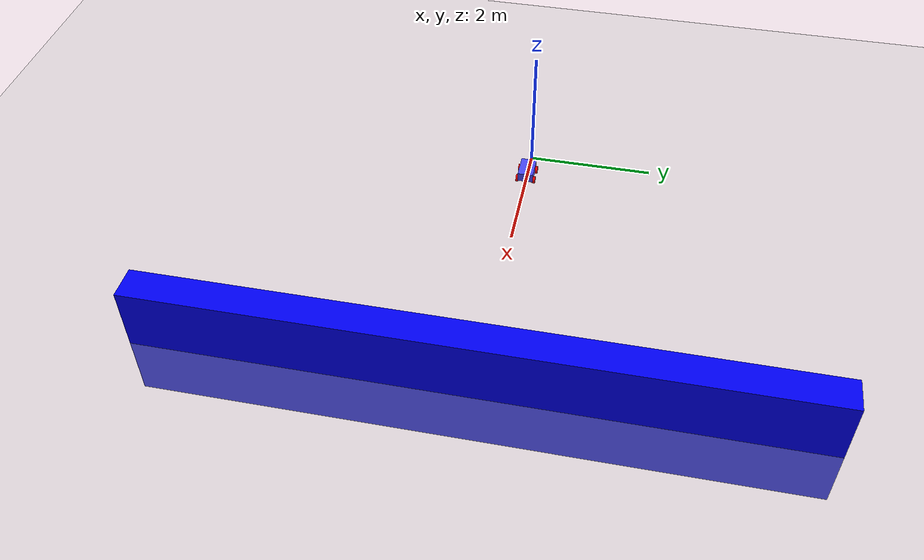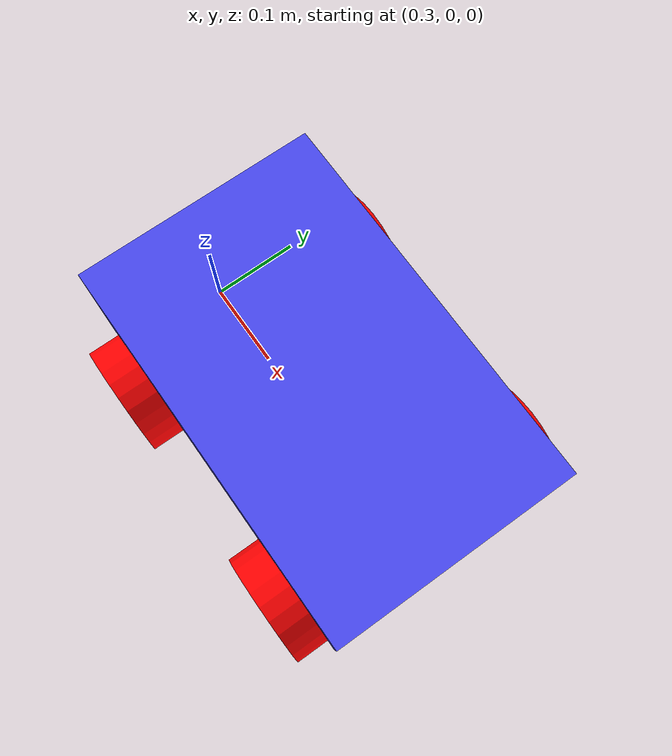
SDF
<?xml version="1.0" ?>

<sdf version="1.8">
        <world name="world_demo">

            <physics name="1ms" type="ignored">
                <max_step_size>0.002</max_step_size>
                <real_time_factor>1.0</real_time_factor>
            </physics>

            <plugin
                filename="gz-sim-physics-system"
                name="gz::sim::systems::Physics">
            </plugin>

            <plugin
                filename="gz-sim-user-commands-system"
                name="gz::sim::systems::UserCommands">

            </plugin>

            <plugin
                filename="gz-sim-scene-broadcaster-system"
                name="gz::sim::systems::SceneBroadcaster">
            </plugin>

            <plugin
                filename="gz-sim-imu-system"
                name="gz::sim::systems::Imu">
            </plugin>

            <plugin
                filename="gz-sim-contact-system"
                name="gz::sim::systems::Contact">
            </plugin>

            <plugin
                filename="gz-sim-sensors-system"
                name="gz::sim::systems::Sensors">
                <render_engine>ogre2</render_engine>
            </plugin>

            <gui fullscreen="0">

                <plugin filename="VisualizeLidar" name="Visualize Lidar">
                </plugin>

                <plugin filename="MinimalScene" name="3D View">
                    <gz-gui>
                        <title>3D View</title>
                        <property type="bool" key="showTitleBar">true</property>
                        <property type="string" key="state">docked</property>
                    </gz-gui>

                    <engine>ogre2</engine>
                    <scene>scene</scene>
                    <ambient_light>0.4 0.4 0.4</ambient_light>
                    <background_color>0.8 0.8 0.8</background_color>
                    <camera_pose>-6 0 6 0 0.5 0</camera_pose>
                    <camera_clip>
                        <near>0.25</near>
                        <far>25000</far>
                    </camera_clip>
                </plugin>

                <plugin filename="GzSceneManager" name="Scene Manager">

                    <gz-gui>

                        <property type="bool" key="resizable">false</property>
                        <property type="double" key="width">5</property>
                        <property type="double" key="height">5</property>
                        <property type="string" key="state">floating</property>
                        <property type="bool" key="showTitleBar">true</property>

                    </gz-gui>

                </plugin>

                <plugin filename="WorldControl" name="World Control">

                    <gz-gui>
                        <title>World Control</title>
                        <property type="bool" key="resizable">false</property>
                        <property type="double" key="width">121</property>
                        <property type="double" key="height">72</property>
                        <property type="double" key="z">1</property>
                        <property type="bool" key="showTitleBar">false</property>

                        <property type="string" key="state">floating</property>
                        <anchors target="3D View">
                            <line own="left" target="left"/>
                            <line own="bottom" target="bottom"/>
                        </anchors>

                    </gz-gui>

                    <play_pause>true</play_pause>
                    <step>true</step>
                    <start_paused>true</start_paused>
                    <service>/world/world_demo/control</service>
                    <stats_topic>/world/world_demo/stats</stats_topic>

                </plugin>

                <plugin filename="WorldStats" name="World stats">

                    <gz-gui>
                        <title>World stats</title>
                        <property type="bool" key="resizable">false</property>
                        <property type="double" key="width">290</property>
                        <property type="double" key="height">110</property>
                        <property type="double" key="z">1</property>
                        <property type="bool" key="showTitleBar">false</property>

                        <property type="string" key="state">floating</property>
                        <anchors target="3D View">
                            <line own="right" target="right"/>
                            <line own="bottom" target="bottom"/>
                        </anchors>

                    </gz-gui>

                    <sim_time>true</sim_time>
                    <real_time>true</real_time>
                    <real_time_factor>true</real_time_factor>
                    <iterations>true</iterations>
                    <topics>/world/world_demo/stats</topics>

                </plugin>

            </gui>

            <light type="directional" name="sun">
                <cast_shadows>true</cast_shadows>
                <pose>0 0 10 0 0 0</pose>
                <diffuse>0.8 0.8 0.8 1</diffuse>
                <specular>0.2 0.2 0.2 1</specular>
                <attenuation>
                    <range>1000</range>
                    <constant>0.9</constant>
                    <linear>0.01</linear>
                    <quadratic>0.001</quadratic>
                </attenuation>
                <direction>-0.5 0.1 -0.9</direction>
            </light>

            <model name="ground_plane">
                <static>true</static>
                <link name="link">
                    <collision name="collision">
                        <geometry>
                            <plane>
                                <normal>0 0 1</normal>
                            </plane>
                        </geometry>
                    </collision>
                    <visual name="visual">
                        <geometry>
                            <plane>
                                <normal>0 0 1</normal>
                                <size>100 100</size>
                            </plane>
                        </geometry>
                        <material>
                            <ambient>0.8 0.8 0.8 1</ambient>
                            <diffuse>0.8 0.8 0.8 1</diffuse>
                            <specular>0.8 0.8 0.8 1</specular>
                        </material>
                    </visual>
                </link>
            </model>

            <model name="wall">
                <static>true</static>
                <pose>5 0 0 0 0 0</pose>
                <link name="box">
                    <visual name="visual">
                        <geometry>
                            <box>
                                <size>0.5 10.0 2.0</size>
                            </box>
                        </geometry>

                        <material>
                            <ambient>0.0 0.0 1.0 1</ambient>
                            <diffuse>0.0 0.0 1.0 1</diffuse>
                            <specular>0.0 0.0 1.0 1</specular>
                        </material>
                    </visual>
                    <collision name="collision">
                        <geometry>
                            <box>
                                <size>0.5 10.0 2.0</size>
                            </box>
                        </geometry>
                    </collision>

                    <sensor name="sensor_contact" type="contact">
                        <contact>
                            <collision>collision</collision>
                        </contact>
                    </sensor>

                </link>

                <plugin filename="gz-sim-touchplugin-system"
                        name="gz::sim::systems::TouchPlugin">
                        <target>arabam</target>
                        <namespace>wall</namespace>
                        <time>0.001</time>
                        <enabled>true</enabled>
                </plugin>

            </model>

            <model name='arabam' canonical_link='chassis'>
            <pose relative_to='world'>0.5 0 0.14 0 0 0</pose>

            <link name='chassis'>
                <pose relative_to='__model__'>0 0 0 0 0 0</pose>
                <inertial>
                    <mass>1.5</mass>
                    <inertia>
                        <ixx>0.0146</ixx>
                        <iyy>0.0479</iyy>
                        <izz>0.0521</izz>
                        <ixy>0</ixy>
                        <ixz>0</ixz>
                        <iyz>0</iyz>
                    </inertia>
                </inertial>
                <visual name='visual'>
                    <geometry>
                        <box>
                            <size>0.4 0.25 0.15</size>
                        </box>
                    </geometry>
                    <material>
                        <ambient>0.3 0.3 1.0 1</ambient>
                        <diffuse>0.3 0.3 1.0 1</diffuse>
                    </material>
                </visual>
                <collision name='collision'>
                    <geometry>
                        <box>
                            <size>0.4 0.25 0.15</size>
                        </box>
                    </geometry>
                </collision>
                <!--IMU SENSOR ENTEGRASYONU -->
                <sensor name="imu_sensor" type="imu">
                    <always_on>1</always_on> <!--IF TRUE SENSOR'LL ALWAYS BE UPDATED ACCORDING TO THE UPDATE RATE-->
                    <update_rate>1</update_rate> <!--FREQ-->
                    <visualize>true</visualize> <!--SENSOR IS VISULIZED IN GUI-->
                    <topic>imu</topic>
                </sensor>

                <!--LIDAR-->
                <sensor name="gpu_lidar" type="gpu_lidar">
                    <pose relative_to="lidar_frame">0 0 0 0 0 0</pose>
                    <topic>lidar</topic>
                    <update_rate>10</update_rate>
                    <ray>
                        <scan>
                            <horizontal>
                                <samples>640</samples>
                                <resolution>1</resolution>
                                <min_angle>-1.5708</min_angle>
                                <max_angle>1.5708</max_angle>
                            </horizontal>
                            <vertical>
                                <samples>1</samples>
                                <resolution>0.01</resolution>
                                <min_angle>0</min_angle>
                                <max_angle>0</max_angle>
                            </vertical>
                        </scan>
                        <range>
                            <min>0.08</min>
                            <max>10.0</max>
                            <resolution>0.01</resolution>
                        </range>
                    </ray>
                    <always_on>1</always_on>
                    <visualize>true</visualize>
                </sensor>
            </link>

            <link name='right_wheel'>
                <pose relative_to='chassis'>0.13 -0.14 -0.075 -1.5707 0 0</pose>
                <inertial>
                    <mass>0.15</mass>
                    <inertia>
                        <ixx>0.000203</ixx>
                        <iyy>0.000203</iyy>
                        <izz>0.000338</izz>
                        <ixy>0</ixy>
                        <ixz>0</ixz>
                        <iyz>0</iyz>
                    </inertia>
                </inertial>
                <visual name='visual'>
                    <geometry>
                        <cylinder>
                            <radius>0.06</radius>
                            <length>0.04</length>
                        </cylinder>
                    </geometry>
                    <material>
                        <ambient>1.0 0.0 0.0 1</ambient>
                        <diffuse>1.0 0.0 0.0 1</diffuse>
                        <specular>1.0 0.0 0.0 1</specular>
                    </material>
                </visual>
                <collision name='collision'>
                    <geometry>
                        <cylinder>
                            <radius>0.06</radius>
                            <length>0.04</length>
                        </cylinder>
                    </geometry>
                    <surface>
                        <friction>
                            <ode>
                                <mu>1.0</mu>
                                <mu2>1.0</mu2>
                            </ode>
                        </friction>
                    </surface>
                </collision>
            </link>

            <link name='right_wheel_front'>
                <pose relative_to='chassis'>-0.13 -0.14 -0.075 -1.5707 0 0</pose>
                <inertial>
                    <mass>0.15</mass>
                    <inertia>
                        <ixx>0.000203</ixx>
                        <iyy>0.000203</iyy>
                        <izz>0.000338</izz>
                        <ixy>0</ixy>
                        <ixz>0</ixz>
                        <iyz>0</iyz>
                    </inertia>
                </inertial>
                <visual name='visual'>
                    <geometry>
                        <cylinder>
                            <radius>0.06</radius>
                            <length>0.04</length>
                        </cylinder>
                    </geometry>
                    <material>
                        <ambient>1.0 0.0 0.0 1</ambient>
                        <diffuse>1.0 0.0 0.0 1</diffuse>
                        <specular>1.0 0.0 0.0 1</specular>
                    </material>
                </visual>
                <collision name='collision'>
                    <geometry>
                        <cylinder>
                            <radius>0.06</radius>
                            <length>0.04</length>
                        </cylinder>
                    </geometry>
                    <surface>
                        <friction>
                            <ode>
                                <mu>1.0</mu>
                                <mu2>1.0</mu2>
                            </ode>
                        </friction>
                    </surface>
                </collision>
            </link>

            <link name='left_wheel'>
                <pose relative_to='chassis'>0.13 0.14 -0.075 -1.5707 0 0</pose>
                <inertial>
                    <mass>0.15</mass>
                    <inertia>
                        <ixx>0.000203</ixx>
                        <iyy>0.000203</iyy>
                        <izz>0.000338</izz>
                        <ixy>0</ixy>
                        <ixz>0</ixz>
                        <iyz>0</iyz>
                    </inertia>
                </inertial>
                <visual name='visual'>
                    <geometry>
                        <cylinder>
                            <radius>0.06</radius>
                            <length>0.04</length>
                        </cylinder>
                    </geometry>
                    <material>
                        <ambient>1.0 0.0 0.0 1</ambient>
                        <diffuse>1.0 0.0 0.0 1</diffuse>
                        <specular>1.0 0.0 0.0 1</specular>
                    </material>
                </visual>
                <collision name='collision'>
                    <geometry>
                        <cylinder>
                            <radius>0.06</radius>
                            <length>0.04</length>
                        </cylinder>
                    </geometry>
                    <surface>
                        <friction>
                            <ode>
                                <mu>1.0</mu>
                                <mu2>1.0</mu2>
                            </ode>
                        </friction>
                    </surface>
                </collision>
            </link>

            <link name='left_wheel_front'>
                <pose relative_to='chassis'>-0.13 0.14 -0.075 -1.5707 0 0</pose>
                <inertial>
                    <mass>0.15</mass>
                    <inertia>
                        <ixx>0.000203</ixx>
                        <iyy>0.000203</iyy>
                        <izz>0.000338</izz>
                        <ixy>0</ixy>
                        <ixz>0</ixz>
                        <iyz>0</iyz>
                    </inertia>
                </inertial>
                <visual name='visual'>
                    <geometry>
                        <cylinder>
                            <radius>0.06</radius>
                            <length>0.04</length>
                        </cylinder>
                    </geometry>
                    <material>
                        <ambient>1.0 0.0 0.0 1</ambient>
                        <diffuse>1.0 0.0 0.0 1</diffuse>
                        <specular>1.0 0.0 0.0 1</specular>
                    </material>
                </visual>
                <collision name='collision'>
                    <geometry>
                        <cylinder>
                            <radius>0.06</radius>
                            <length>0.04</length>
                        </cylinder>
                    </geometry>
                    <surface>
                        <friction>
                            <ode>
                                <mu>1.0</mu>
                                <mu2>1.0</mu2>
                            </ode>
                        </friction>
                    </surface>
                </collision>
            </link>

            <joint name='left_wheel_joint' type='revolute'>
                <pose relative_to='left_wheel'/>
                <parent>chassis</parent>
                <child>left_wheel</child>
                <axis>
                    <xyz expressed_in='__model__'>0 1 0</xyz>
                    <limit>
                        <lower>-1.79769e+308</lower>
                        <upper>1.79769e+308</upper>
                    </limit>
                    <dynamics>
                        <damping>0.1</damping>
                    </dynamics>
                </axis>
            </joint>

            <joint name='left_wheel_front_joint' type='revolute'>
                <pose relative_to='left_wheel_front'/>
                <parent>chassis</parent>
                <child>left_wheel_front</child>
                <axis>
                    <xyz expressed_in='__model__'>0 1 0</xyz>
                    <limit>
                        <lower>-1.79769e+308</lower>
                        <upper>1.79769e+308</upper>
                    </limit>
                    <dynamics>
                        <damping>0.1</damping>
                    </dynamics>
                </axis>
            </joint>

            <joint name='right_wheel_joint' type='revolute'>
                <pose relative_to='right_wheel'/>
                <parent>chassis</parent>
                <child>right_wheel</child>
                <axis>
                    <xyz expressed_in='__model__'>0 1 0</xyz>
                    <limit>
                        <lower>-1.79769e+308</lower>
                        <upper>1.79769e+308</upper>
                    </limit>
                    <dynamics>
                        <damping>0.1</damping>
                    </dynamics>
                </axis>
            </joint>

            <joint name='right_wheel_joint_front' type='revolute'>
                <pose relative_to='right_wheel_front'/>
                <parent>chassis</parent>
                <child>right_wheel_front</child>
                <axis>
                    <xyz expressed_in='__model__'>0 1 0</xyz>
                    <limit>
                        <lower>-1.79769e+308</lower>
                        <upper>1.79769e+308</upper>
                    </limit>
                    <dynamics>
                        <damping>0.1</damping>
                    </dynamics>
                </axis>
            </joint>

            <plugin
                filename="gz-sim-diff-drive-system"
                name="gz::sim::systems::DiffDrive">
                <left_joint>left_wheel_joint</left_joint>
                <left_joint>left_wheel_front_joint</left_joint>
                <right_joint>right_wheel_joint</right_joint>
                <right_joint>right_wheel_joint_front</right_joint>
                <wheel_separation>0.28</wheel_separation>
                <wheel_radius>0.06</wheel_radius>
                <odom_publish_frequency>50</odom_publish_frequency>
                <topic>cmd_vel</topic>
            </plugin>

            <frame name="lidar_frame" attached_to="chassis">
                <pose>0.22 0 0.1 0 0 0</pose>
            </frame>

            <plugin
            name='gz::sim::systems::OdometryPublisher'
            filename='gz-sim-odometry-publisher-system'>
                <dimensions>3</dimensions>
                <tf_topic>/tf</tf_topic>
            </plugin>

        </model>

        </world>
</sdf>
